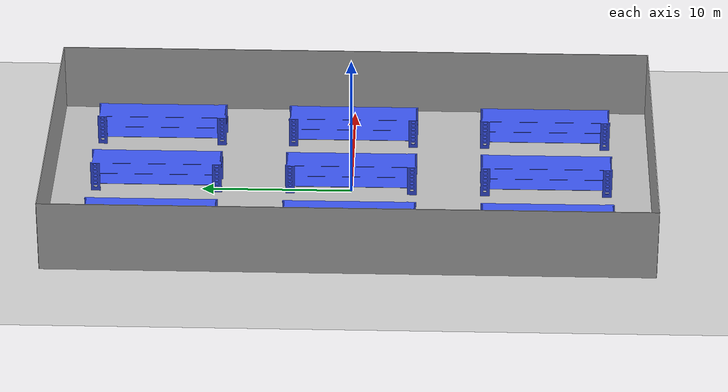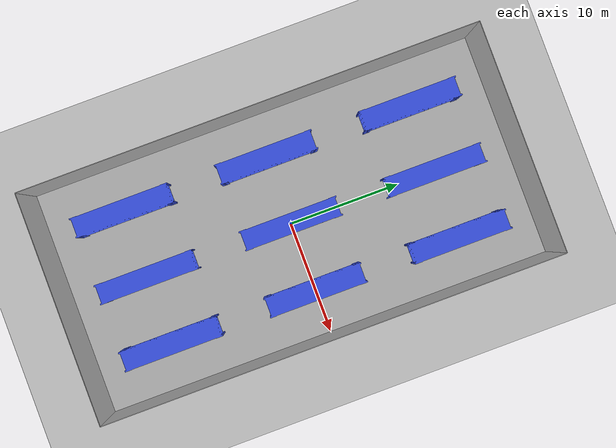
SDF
<?xml version="1.0" ?>

<sdf version="1.5">
        <world name="default">
                <light name='sun' type='directional'>
                        <cast_shadows>0</cast_shadows>
                        <pose>0 0 10 0 -0 0</pose>
                        <diffuse>0.8 0.8 0.8 1</diffuse>
                        <specular>0.2 0.2 0.2 1</specular>
                        <attenuation>
                                <range>1000</range>
                                <constant>0.9</constant>
                                <linear>0.01</linear>
                                <quadratic>0.001</quadratic>
                        </attenuation>
                        <direction>0.5 0.1 -0.9</direction>
                </light>

                <scene>
                        <ambient>0.4 0.4 0.4 1</ambient>
                        <background>0.7 0.7 0.7 1</background>
                        <shadows>0</shadows>
                </scene>

                <physics type='ode'>
                        <max_step_size>0.01</max_step_size>
                        <real_time_factor>1</real_time_factor>
                        <real_time_update_rate>100</real_time_update_rate>
                        <gravity>0 0 -9.8</gravity>
                </physics>
                <!-- A ground plane -->
                <include>
                        <uri>model://ground_plane</uri>
                </include>

                <include>
                        <uri> model://WarehouseNew</uri>
                        <pose>0 0 0 0 0 0 </pose>
                </include>

                <!--Shelfs-->
                <model name="S1">
                        <include>
                                <uri> model://shelf</uri>
                                <pose> -6 -13 0.3 0.000074 -0.000016 0.000406 </pose>
                        </include>
                </model>

                <model name="S2">
                        <include>
                                <uri> model://shelf</uri>
                                <pose> 0 -13 0.3 0.000074 -0.000016 0.000406 </pose>
                        </include>
                </model>

                <model name="S3">
                        <include>
                                <uri> model://shelf</uri>
                                <pose> 6 -13 0.3 0.000074 -0.000016 0.000406 </pose>
                        </include>
                </model>

                <model name="S4">
                        <include>
                                <uri> model://shelf</uri>
                                <pose> -6 0 0.3 0.000074 -0.000016 0.000406 </pose>
                        </include>
                </model>

                <model name="S5">
                        <include>
                                <uri> model://shelf</uri>
                                <pose> 0 0 0.3 0.000074 -0.000016 0.000406 </pose>
                        </include>
                </model>

                <model name="S6">
                        <include>
                                <uri> model://shelf</uri>
                                <pose> 6 0 0.3 0.000074 -0.000016 0.000406 </pose>
                        </include>
                </model>

                <model name="S7">
                        <include>
                                <uri> model://shelf</uri>
                                <pose> -6 13 0.3 0.000074 -0.000016 0.000406 </pose>
                        </include>
                </model>

                <model name="S8">
                        <include>
                                <uri> model://shelf</uri>
                                <pose> 0 13 0.3 0.000074 -0.000016 0.000406 </pose>
                        </include>
                </model>

                <model name="S9">
                        <include>
                                <uri> model://shelf</uri>
                                <pose> 6 13 0.3 0.000074 -0.000016 0.000406 </pose>
                        </include>
                </model>
                <!--Walls-->
                <model name="wall_1">
                        <pose> 10 0 2.5 0 0 0</pose>
                        <static>true</static>
                        <link name="link">
                                <inertial>
                                        <mass>10.0</mass>
                                        <inertia> <!-- inertias are tricky to compute -->
                                                <ixx>1</ixx>       <!-- for a box: ixx = 0.083 * mass * (y*y + z*z) -->
                                                <ixy>0</ixy>         <!-- for a box: ixy = 0 -->
                                                <ixz>0</ixz>         <!-- for a box: ixz = 0 -->
                                                <iyy>1</iyy>       <!-- for a box: iyy = 0.083 * mass * (x*x + z*z) -->
                                                <iyz>0</iyz>         <!-- for a box: iyz = 0 -->
                                                <izz>1</izz>       <!-- for a box: izz = 0.083 * mass * (x*x + y*y) -->
                                        </inertia>
                                </inertial>
                                <collision name="collision">
                                        <geometry>
                                                <box>
                                                <size>0.05 40 5</size>
                                                </box>
                                        </geometry>
                                </collision>
                                <visual name="visual">
                                        <geometry>
                                                <box>
                                                <size>0.05 40 5</size>
                                                </box>
                                        </geometry>
                                </visual>
                        </link>
                </model>

                <model name="wall_2">
                        <pose>-10 0 2.5 0 0 0</pose>
                        <static>true</static>
                        <link name="link">
                                <inertial>
                                        <mass>10.0</mass>
                                        <inertia> <!-- inertias are tricky to compute -->
                                                <ixx>1</ixx>       <!-- for a box: ixx = 0.083 * mass * (y*y + z*z) -->
                                                <ixy>0</ixy>         <!-- for a box: ixy = 0 -->
                                                <ixz>0</ixz>         <!-- for a box: ixz = 0 -->
                                                <iyy>1</iyy>       <!-- for a box: iyy = 0.083 * mass * (x*x + z*z) -->
                                                <iyz>0</iyz>         <!-- for a box: iyz = 0 -->
                                                <izz>1</izz>       <!-- for a box: izz = 0.083 * mass * (x*x + y*y) -->
                                        </inertia>
                                </inertial>
                                <collision name="collision">
                                        <geometry>
                                                <box>
                                                <size>0.05 40 5</size>
                                                </box>
                                        </geometry>
                                </collision>
                                <visual name="visual">
                                        <geometry>
                                                <box>
                                                <size>0.05 40 5</size>
                                                </box>
                                        </geometry>
                                </visual>
                        </link>
                </model>

                <model name="wall_3">
                        <pose>0 20 2.5 0 0 0</pose>
                        <static>true</static>
                        <link name="link">
                                <inertial>
                                        <mass>10.0</mass>
                                        <inertia> <!-- inertias are tricky to compute -->
                                                <ixx>1</ixx>       <!-- for a box: ixx = 0.083 * mass * (y*y + z*z) -->
                                                <ixy>0</ixy>         <!-- for a box: ixy = 0 -->
                                                <ixz>0</ixz>         <!-- for a box: ixz = 0 -->
                                                <iyy>1</iyy>       <!-- for a box: iyy = 0.083 * mass * (x*x + z*z) -->
                                                <iyz>0</iyz>         <!-- for a box: iyz = 0 -->
                                                <izz>1</izz>       <!-- for a box: izz = 0.083 * mass * (x*x + y*y) -->
                                        </inertia>
                                </inertial>
                                <collision name="collision">
                                        <geometry>
                                                <box>
                                                <size>20 0.05 5</size>
                                                </box>
                                        </geometry>
                                </collision>
                                <visual name="visual">
                                        <geometry>
                                                <box>
                                                <size>20 0.05 5</size>
                                                </box>
                                        </geometry>
                                </visual>
                        </link>
                </model>

                <model name="wall_4">
                        <pose>0 -20 2.5 0 0 0</pose>
                        <static>true</static>
                        <link name="link">
                                <inertial>
                                        <mass>10.0</mass>
                                        <inertia> <!-- inertias are tricky to compute -->
                                                <ixx>1</ixx>       <!-- for a box: ixx = 0.083 * mass * (y*y + z*z) -->
                                                <ixy>0</ixy>         <!-- for a box: ixy = 0 -->
                                                <ixz>0</ixz>         <!-- for a box: ixz = 0 -->
                                                <iyy>1</iyy>       <!-- for a box: iyy = 0.083 * mass * (x*x + z*z) -->
                                                <iyz>0</iyz>         <!-- for a box: iyz = 0 -->
                                                <izz>1</izz>       <!-- for a box: izz = 0.083 * mass * (x*x + y*y) -->
                                        </inertia>
                                </inertial>
                                <collision name="collision">
                                        <geometry>
                                                <box>
                                                <size>20 0.05 5</size>
                                                </box>
                                        </geometry>
                                </collision>
                                <visual name="visual">
                                        <geometry>
                                                <box>
                                                <size>20 0.05 5</size>
                                                </box>
                                        </geometry>
                                </visual>
                        </link>
                </model>
        </world>
</sdf>

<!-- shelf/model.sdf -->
<sdf version='1.6'>
  <model name='shelf'>
    <link name='link'>
      <inertial>
        <mass>0.1</mass>
        <inertia>
          <ixx>1</ixx>
          <ixy>0.00</ixy>
          <ixz>0.00</ixz>
          <iyy>1</iyy>
          <iyz>0.00</iyz>
          <izz>1</izz>
        </inertia>
      </inertial>
      <pose frame=''>0 0 0 0 -0 0</pose>
      <visual name='visual'>
        <pose frame=''>0 0 0 0 -0 0</pose>
        <geometry>
          <mesh>
            <uri>model://shelf/meshes/shelf.dae</uri>
            <scale>2.5 12.5 2</scale>
          </mesh>
        </geometry>
        <transparency>0</transparency>
        <cast_shadows>1</cast_shadows>
      </visual>
      <collision name='collision'>
        <laser_retro>0</laser_retro>
        <max_contacts>10</max_contacts>
        <pose frame=''>0 0 0 0 -0 0</pose>
        <geometry>
          <mesh>
            <uri>model://shelf/meshes/shelf.dae</uri>
            <scale>2.5 12.5 2</scale>
          </mesh>
        </geometry>
        <surface>
          <friction>
            <ode>
              <mu>1</mu>
              <mu2>1</mu2>
              <fdir1>0 0 0</fdir1>
              <slip1>0</slip1>
              <slip2>0</slip2>
            </ode>
            <torsional>
              <coefficient>1</coefficient>
              <patch_radius>1</patch_radius>
              <surface_radius>1</surface_radius>
              <use_patch_radius>1</use_patch_radius>
              <ode>
                <slip>0</slip>
              </ode>
            </torsional>
          </friction>
          <bounce>
            <restitution_coefficient>1</restitution_coefficient>
            <threshold>1e+06</threshold>
          </bounce>
          <contact>
            <collide_without_contact>0</collide_without_contact>
            <collide_without_contact_bitmask>1</collide_without_contact_bitmask>
            <collide_bitmask>1</collide_bitmask>
            <ode>
              <soft_cfm>0</soft_cfm>
              <soft_erp>0.2</soft_erp>
              <kp>1e+13</kp>
              <kd>1</kd>
              <max_vel>0.01</max_vel>
              <min_depth>0</min_depth>
            </ode>
            <bullet>
              <split_impulse>1</split_impulse>
              <split_impulse_penetration_threshold>-0.01</split_impulse_penetration_threshold>
              <soft_cfm>0</soft_cfm>
              <soft_erp>0.2</soft_erp>
              <kp>1e+13</kp>
              <kd>1</kd>
            </bullet>
          </contact>
        </surface>
      </collision>
    </link>
    <static>0</static>
    <allow_auto_disable>1</allow_auto_disable>
  </model>
</sdf>

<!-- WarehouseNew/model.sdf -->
<sdf version="1.5">
  <model name="WarehouseNew">
    <static>true</static>

    <link name="link">
      <collision name="collision">
        <geometry>
          <mesh>
            <uri>model://WarehouseNew/meshes/warehouse_floor_fine.dae</uri>
            <scale>1 1 1</scale>
          </mesh>
        </geometry>
      </collision>
      <visual name="visual">
        <geometry>
          <mesh>
            <uri>model://WarehouseNew/meshes/warehouse_floor_fine.dae</uri>
            <scale>1 1 1</scale>
          </mesh>
        </geometry>
      </visual>
    </link>
  </model>
</sdf>
